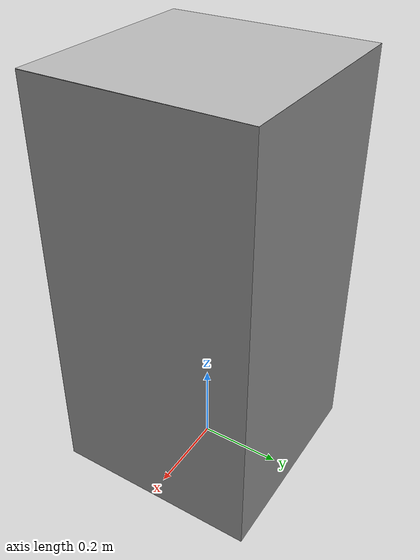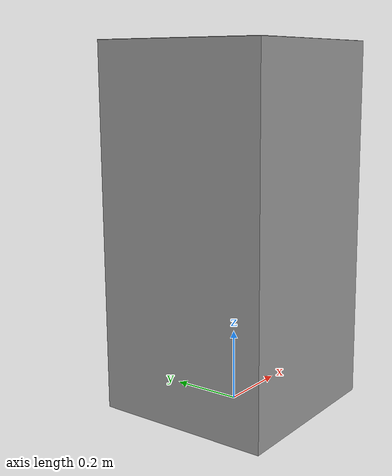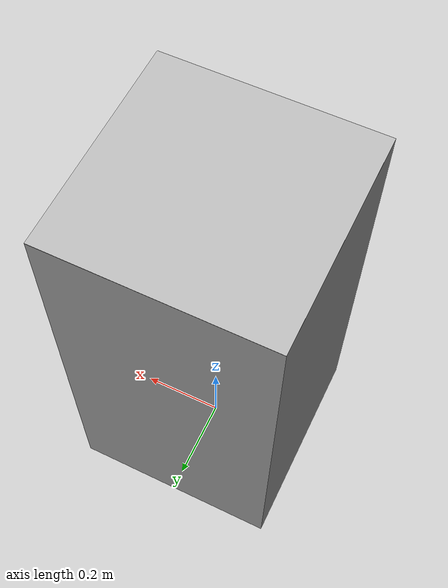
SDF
<?xml version="1.0"?>
<sdf version="1.5">
    <model name="box-100">
        <static>true</static>
        <link name="box-100_link">
            <pose>0.0 0.0 0.5 0 0 0</pose>
            <visual name="visual_box-100">
                <cast_shadows>false</cast_shadows>
                <geometry>
                    <box>
                        <size>0.5 0.5 1.00</size>
                    </box>
                </geometry>
                <material>
                    <script>
                        <uri>file://media/materials/scripts/gazebo.material</uri>
                        <name>Gazebo/Grey</name>
                    </script>
                </material>
            </visual>

            <collision name="collision_box-100">
                <geometry>
                    <box>
                        <size>0.5 0.5 1.00</size>
                    </box>
                </geometry>
            </collision>
        </link>

        <link name="box-100-clever_link">
            <pose>0.0 0.0 1.00 0 0 0</pose>
            <visual name="visual_box-100-clever">
                <cast_shadows>false</cast_shadows>
                <geometry>
                    <box>
                        <size>0.5 0.5 1e-3</size>
                    </box>
                </geometry>
                <material>
                    <script>
                        <uri>model://box-100/materials/scripts</uri>
                        <uri>model://box-100/materials/textures</uri>
                        <name>box100/qr-code</name>
                    </script>
                </material>
            </visual>
        </link>
    </model>
</sdf>
